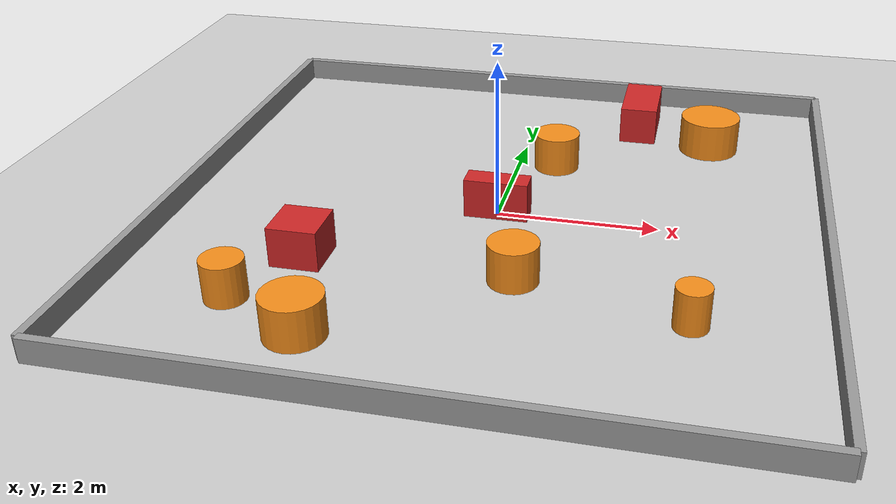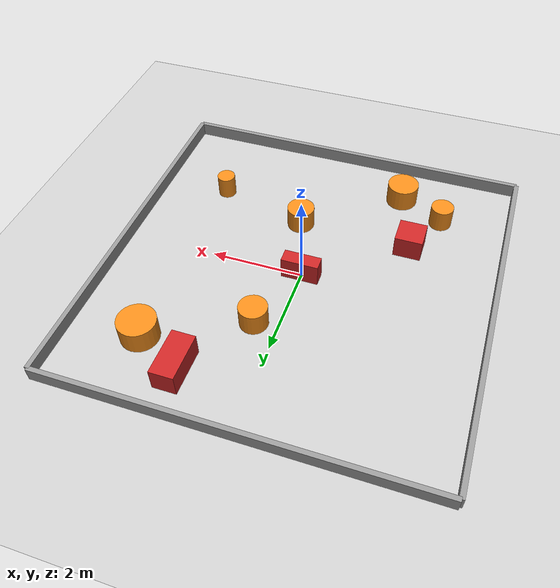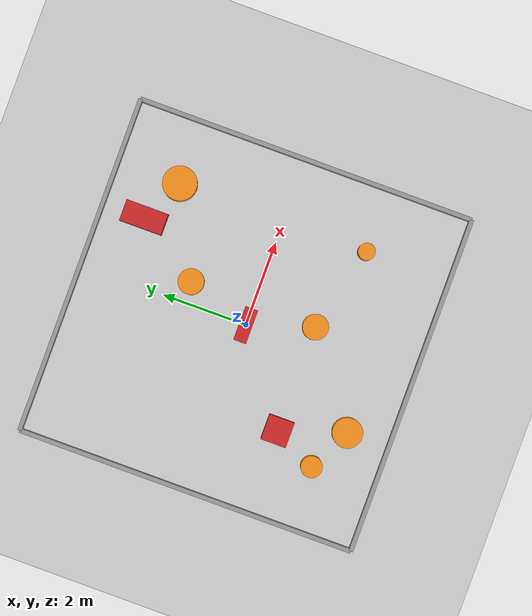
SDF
<?xml version="1.0"?>
<sdf version="1.6">
  <world name="obstacle_course">
    <include><uri>model://ground_plane</uri></include>
    <include><uri>model://sun</uri></include>
    <scene><shadows>false</shadows></scene>

    <gui fullscreen='0'>
      <camera name='user_camera'>
        <pose>0 0 12 0 1.57 0</pose>
        <view_controller>orbit</view_controller>
      </camera>
    </gui>

    <physics type="ode">
      <real_time_update_rate>500.0</real_time_update_rate>
      <max_step_size>0.002</max_step_size>
      <real_time_factor>1</real_time_factor>
    </physics>

    <!-- === 四周低矮围栏（标记边界）=== -->
    <model name="fence_bottom">
      <static>1</static>
      <link name="link">
        <collision name="collision">
          <geometry><box><size>8.0 0.1 0.3</size></box></geometry>
        </collision>
        <visual name="visual">
          <geometry><box><size>8.0 0.1 0.3</size></box></geometry>
          <material><script><uri>file://media/materials/scripts/gazebo.material</uri><name>Gazebo/Gray</name></script></material>
        </visual>
      </link>
      <pose>0 -4.0 0.15 0 0 0</pose>
    </model>

    <model name="fence_top">
      <static>1</static>
      <link name="link">
        <collision name="collision">
          <geometry><box><size>8.0 0.1 0.3</size></box></geometry>
        </collision>
        <visual name="visual">
          <geometry><box><size>8.0 0.1 0.3</size></box></geometry>
          <material><script><uri>file://media/materials/scripts/gazebo.material</uri><name>Gazebo/Gray</name></script></material>
        </visual>
      </link>
      <pose>0 4.0 0.15 0 0 0</pose>
    </model>

    <model name="fence_left">
      <static>1</static>
      <link name="link">
        <collision name="collision">
          <geometry><box><size>0.1 8.0 0.3</size></box></geometry>
        </collision>
        <visual name="visual">
          <geometry><box><size>0.1 8.0 0.3</size></box></geometry>
          <material><script><uri>file://media/materials/scripts/gazebo.material</uri><name>Gazebo/Gray</name></script></material>
        </visual>
      </link>
      <pose>-4.0 0 0.15 0 0 0</pose>
    </model>

    <model name="fence_right">
      <static>1</static>
      <link name="link">
        <collision name="collision">
          <geometry><box><size>0.1 8.0 0.3</size></box></geometry>
        </collision>
        <visual name="visual">
          <geometry><box><size>0.1 8.0 0.3</size></box></geometry>
          <material><script><uri>file://media/materials/scripts/gazebo.material</uri><name>Gazebo/Gray</name></script></material>
        </visual>
      </link>
      <pose>4.0 0 0.15 0 0 0</pose>
    </model>

    <!-- === 散布障碍物：圆柱体 + 方盒 === -->

    <!-- 区域1: 左下密集区 -->
    <model name="cyl1"><static>1</static>
      <link name="link"><collision name="c"><geometry><cylinder><radius>0.25</radius><length>0.5</length></cylinder></geometry></collision>
        <visual name="v"><geometry><cylinder><radius>0.25</radius><length>0.5</length></cylinder></geometry>
          <material><script><uri>file://media/materials/scripts/gazebo.material</uri><name>Gazebo/Orange</name></script></material></visual></link>
      <pose>-2.5 -2.5 0.25 0 0 0</pose></model>

    <model name="cyl2"><static>1</static>
      <link name="link"><collision name="c"><geometry><cylinder><radius>0.35</radius><length>0.5</length></cylinder></geometry></collision>
        <visual name="v"><geometry><cylinder><radius>0.35</radius><length>0.5</length></cylinder></geometry>
          <material><script><uri>file://media/materials/scripts/gazebo.material</uri><name>Gazebo/Orange</name></script></material></visual></link>
      <pose>-1.5 -3.0 0.25 0 0 0</pose></model>

    <model name="box1"><static>1</static>
      <link name="link"><collision name="c"><geometry><box><size>0.6 0.6 0.5</size></box></geometry></collision>
        <visual name="v"><geometry><box><size>0.6 0.6 0.5</size></box></geometry>
          <material><script><uri>file://media/materials/scripts/gazebo.material</uri><name>Gazebo/Red</name></script></material></visual></link>
      <pose>-2.0 -1.5 0.25 0 0 0</pose></model>

    <!-- 区域2: 中央通道—两侧障碍形成狭窄通道 -->
    <model name="cyl3"><static>1</static>
      <link name="link"><collision name="c"><geometry><cylinder><radius>0.3</radius><length>0.5</length></cylinder></geometry></collision>
        <visual name="v"><geometry><cylinder><radius>0.3</radius><length>0.5</length></cylinder></geometry>
          <material><script><uri>file://media/materials/scripts/gazebo.material</uri><name>Gazebo/Orange</name></script></material></visual></link>
      <pose>0.5 -1.5 0.25 0 0 0</pose></model>

    <model name="cyl4"><static>1</static>
      <link name="link"><collision name="c"><geometry><cylinder><radius>0.3</radius><length>0.5</length></cylinder></geometry></collision>
        <visual name="v"><geometry><cylinder><radius>0.3</radius><length>0.5</length></cylinder></geometry>
          <material><script><uri>file://media/materials/scripts/gazebo.material</uri><name>Gazebo/Orange</name></script></material></visual></link>
      <pose>0.5 1.5 0.25 0 0 0</pose></model>

    <model name="box2"><static>1</static>
      <link name="link"><collision name="c"><geometry><box><size>0.8 0.3 0.5</size></box></geometry></collision>
        <visual name="v"><geometry><box><size>0.8 0.3 0.5</size></box></geometry>
          <material><script><uri>file://media/materials/scripts/gazebo.material</uri><name>Gazebo/Red</name></script></material></visual></link>
      <pose>0 0 0.25 0 0 0</pose></model>

    <!-- 区域3: 右上角 -->
    <model name="cyl5"><static>1</static>
      <link name="link"><collision name="c"><geometry><cylinder><radius>0.4</radius><length>0.5</length></cylinder></geometry></collision>
        <visual name="v"><geometry><cylinder><radius>0.4</radius><length>0.5</length></cylinder></geometry>
          <material><script><uri>file://media/materials/scripts/gazebo.material</uri><name>Gazebo/Orange</name></script></material></visual></link>
      <pose>2.5 2.5 0.25 0 0 0</pose></model>

    <model name="box3"><static>1</static>
      <link name="link"><collision name="c"><geometry><box><size>0.5 1.0 0.5</size></box></geometry></collision>
        <visual name="v"><geometry><box><size>0.5 1.0 0.5</size></box></geometry>
          <material><script><uri>file://media/materials/scripts/gazebo.material</uri><name>Gazebo/Red</name></script></material></visual></link>
      <pose>1.5 3.0 0.25 0 0 0</pose></model>

    <!-- 区域4: 右下稀疏—留给目标点位空间 -->
    <model name="cyl6"><static>1</static>
      <link name="link"><collision name="c"><geometry><cylinder><radius>0.2</radius><length>0.5</length></cylinder></geometry></collision>
        <visual name="v"><geometry><cylinder><radius>0.2</radius><length>0.5</length></cylinder></geometry>
          <material><script><uri>file://media/materials/scripts/gazebo.material</uri><name>Gazebo/Orange</name></script></material></visual></link>
      <pose>2.5 -2.0 0.25 0 0 0</pose></model>

  </world>
</sdf>
